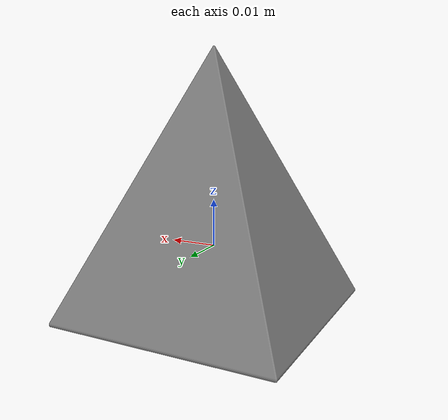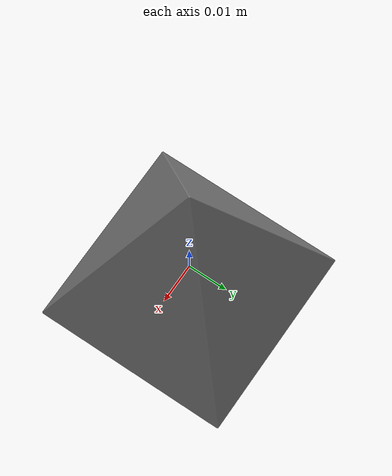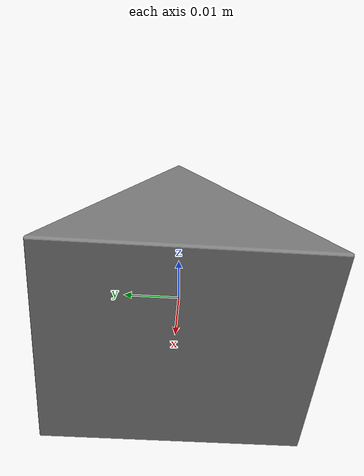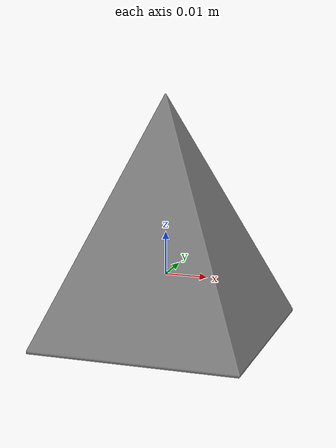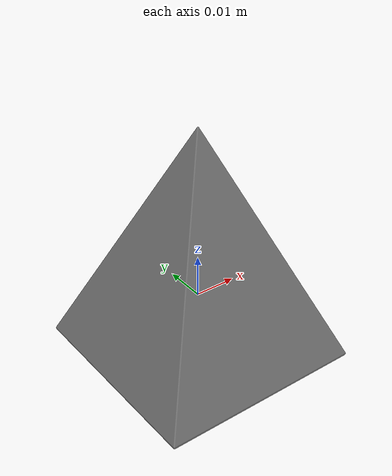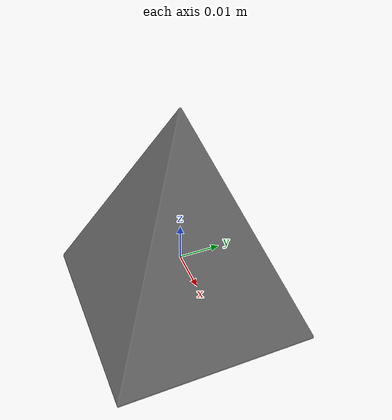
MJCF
<mujoco model="pyramid">
    <compiler angle="radian"/>
    <default>
        <geom type="mesh" condim="3" margin="0.005" contype="1" conaffinity="1"/>
    </default>

    <asset>
        <mesh name="pyramid" file="pyramid.stl" scale="0.001 0.001 0.0016"/>
    </asset>
    <worldbody>
        <body name="pyramid">
            <geom mesh="pyramid" density="400"/>
        </body>
    </worldbody>
</mujoco>
